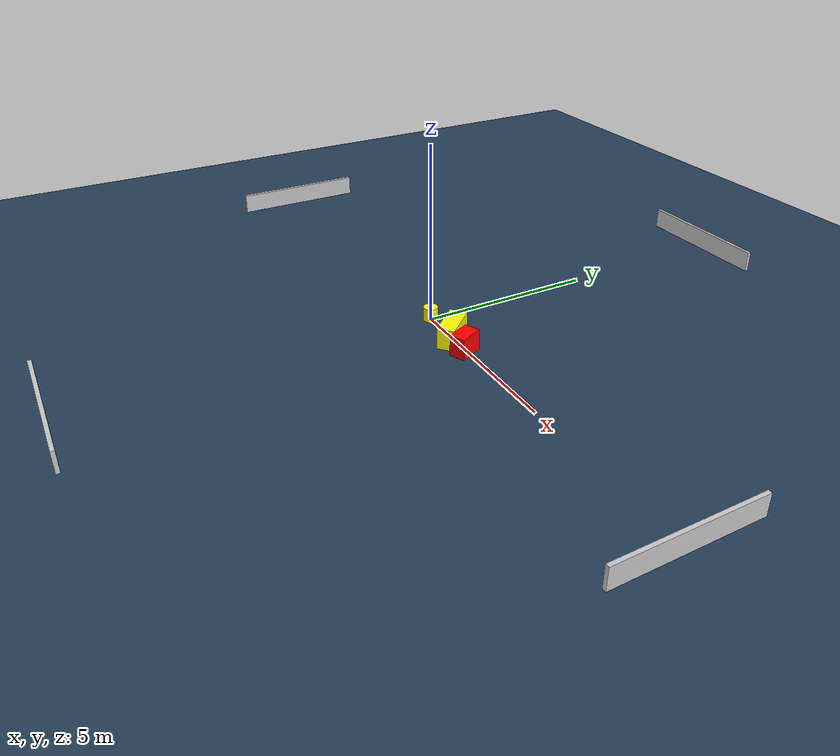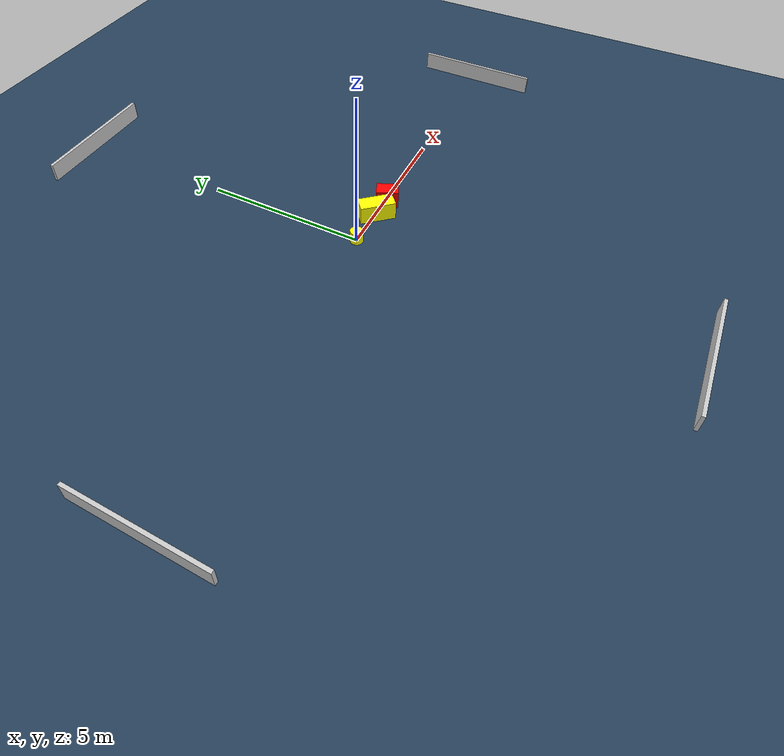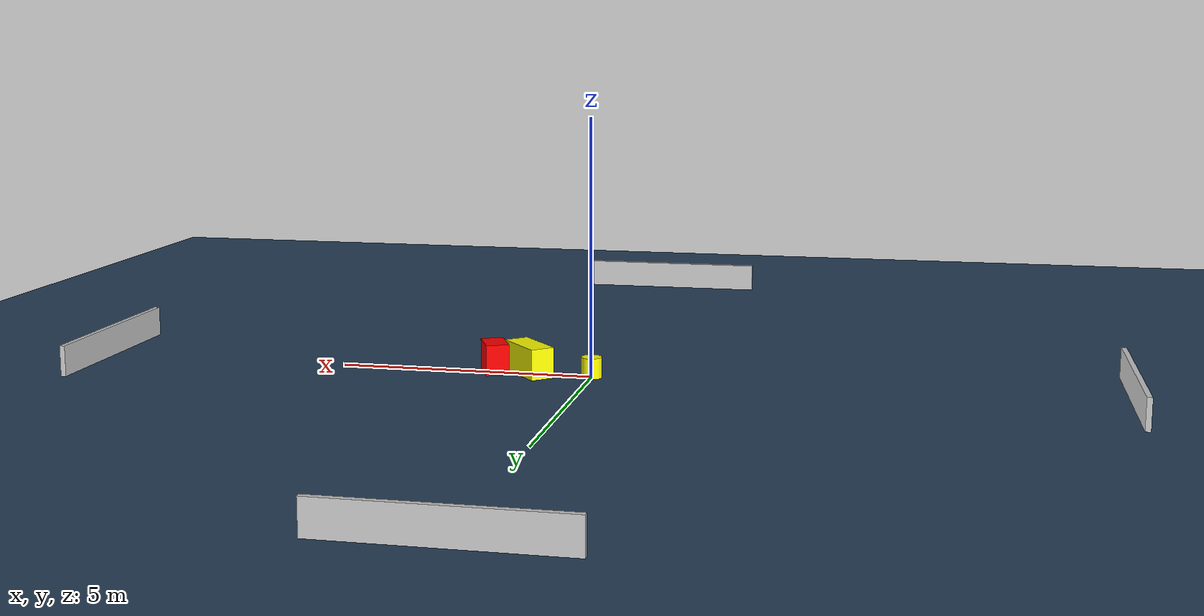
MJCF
<?xml version="1.0" ?>
<mujoco model="generated_environment">
  <option timestep="0.01" integrator="RK4" cone="elliptic"/>
  <default>
    <geom density="1"/>
  </default>
  <asset>
    <texture builtin="gradient" height="3072" name="skybox" rgb1="0.3 0.5 0.7" rgb2="0 0 0" type="skybox" width="512"/>
    <texture builtin="checker" height="300" name="groundplane" rgb1="0.2 0.3 0.4" rgb2="0.1 0.2 0.3" type="2d" width="300"/>
    <material name="groundplane" reflectance="0.2" texrepeat="5 5" texture="groundplane"/>
  </asset>
  <worldbody>
    <light dir="0 0 -1" directional="true" pos="0 0 1.5"/>
    <geom condim="3" friction="0.5 0.005 0.001" material="groundplane" name="floor" pos="0 0 0" size="0 0 0.05" type="plane"/>
    <body name="walls">
      <geom name="wall_1" condim="4" pos="-10.0 0.0 0.3" rgba="0.800000011920929 0.800000011920929 0.800000011920929 1.0" size="0.05 2.0 0.3" type="box"/>
      <geom name="wall_2" condim="4" pos="10.0 0.0 0.3" rgba="0.800000011920929 0.800000011920929 0.800000011920929 1.0" size="0.05 2.0 0.3" type="box"/>
      <geom name="wall_3" condim="4" pos="0.0 -10.0 0.3" rgba="0.800000011920929 0.800000011920929 0.800000011920929 1.0" size="2.0 0.05 0.3" type="box"/>
      <geom name="wall_4" condim="4" pos="0.0 10.0 0.3" rgba="0.800000011920929 0.800000011920929 0.800000011920929 1.0" size="2.0 0.05 0.3" type="box"/>
    </body>
    <body name="robot">
      <joint name="joint_x" type="slide" pos="0 0 0" axis="1 0 0"/>
      <joint name="joint_y" type="slide" pos="0 0 0" axis="0 1 0"/>
      <geom name="robot" type="cylinder" pos="0.0 0.0 0.2" size="0.2 0.2 0.0" mass="5.0" friction="1.0 0.005 0.0001" condim="4" rgba="1.0 1.0 0.0 1.0"/>
    </body>
    <body name="obstacle_1_movable">
      <geom name="obstacle_1_movable" condim="4" pos="1.2409001665647201 -0.04058741602400981 0.3" euler="0 0 221.54199578473444" friction="0.0 0.005 0.001" rgba="1.0 1.0 0.0 1.0" size="0.24208851001754716 0.5511962340713921 0.3" type="box" mass="0.1"/>
      <joint type="free"/>
    </body>
    <body name="obstacle_2_static">
      <geom name="obstacle_2_static" condim="4" pos="1.9443435934913431 -0.07528161908695151 0.3" euler="0 0 294.1399993122609" friction="0.0 0.005 0.001" rgba="1.0 0.0 0.0 1.0" size="0.34633771279155173 0.22130068430652677 0.3" type="box"/>
    </body>
  </worldbody>
  <actuator>
    <motor name="actuator_x" joint="joint_x" gear="1" ctrlrange="-1 1"/>
    <motor name="actuator_y" joint="joint_y" gear="1" ctrlrange="-1 1"/>
  </actuator>
</mujoco>
